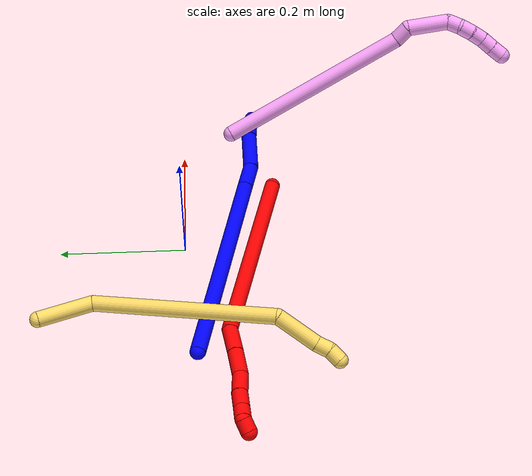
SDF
<sdf version="1.7">
 <world name="default">
  <model name="photoneo_s_sensor">
   <static>1</static>
   <pose>0 0 2 1.57079 1.57079 3.14159</pose>
   <link name="link">
    <inertial><mass>0.1</mass></inertial>
    <sensor name="sensor" type="depth">
     <update_rate>30</update_rate>
     <camera>
      <horizontal_fov>1.22</horizontal_fov>
      <image><width>1920</width><height>1200</height><format>B8G8R8</format></image>
      <clip><near>0.1</near><far>4</far></clip>
      <depth_camera><output>points</output></depth_camera>
     </camera>
     <plugin name="camera_plugin" filename="libgazebo_ros_depth_camera.so">
      <baseline>0.2</baseline>
      <alwaysOn>1</alwaysOn>
      <updateRate>0.0</updateRate>
      <cameraName>camera_ir</cameraName>
      <imageTopicName>/camera/color/image_raw</imageTopicName>
      <cameraInfoTopicName>/camera/color/camera_info</cameraInfoTopicName>
      <depthImageTopicName>/camera/depth/image_raw</depthImageTopicName>
      <depthImageCameraInfoTopicName>/camera/depth/camera_info</depthImageCameraInfoTopicName>
      <pointCloudTopicName>/camera/depth/points</pointCloudTopicName>
      <frameName>fr_optical</frameName>
      <pointCloudCutoff>0.1</pointCloudCutoff>
      <pointCloudCutoffMax>2.0</pointCloudCutoffMax>
      <distortionK1>0</distortionK1>
      <distortionK2>0</distortionK2>
      <distortionK3>0</distortionK3>
      <distortionT1>0</distortionT1>
      <distortionT2>0</distortionT2>
      <CxPrime>0</CxPrime>
      <Cx>0</Cx>
      <Cy>0</Cy>
      <focalLength>0</focalLength>
      <hackBaseline>0</hackBaseline>
     </plugin>
    </sensor>
   </link>
  </model>
  <model name="bin">
   <static>1</static>
   <link name="bottom">
    <collision name="collision-bottom">
     <pose>0 0 -0.01 0 -0 0</pose>
     <geometry><box><size>0.8 0.6 0.02</size></box></geometry>
     <surface>
      <friction><ode><mu>100</mu><mu2>100</mu2></ode></friction>
      <contact><collide_bitmask>65535</collide_bitmask></contact>
     </surface>
    </collision>
   </link>
   <link name="west_wall">
    <collision name="collision-west_wall">
     <pose>-0.41 0 0.1 0 -0 0</pose>
     <geometry><box><size>0.02 0.6 0.2</size></box></geometry>
     <surface>
      <friction><ode><mu>100</mu><mu2>100</mu2></ode></friction>
      <contact><collide_bitmask>65535</collide_bitmask></contact>
     </surface>
    </collision>
   </link>
   <link name="east_wall">
    <collision name="collision-east_wall">
     <pose>0.41 0 0.1 0 -0 0</pose>
     <geometry><box><size>0.02 0.6 0.2</size></box></geometry>
     <surface>
      <friction><ode><mu>100</mu><mu2>100</mu2></ode></friction>
      <contact><collide_bitmask>65535</collide_bitmask></contact>
     </surface>
    </collision>
   </link>
   <link name="south_wall">
    <collision name="collision-south_wall">
     <pose>0 -0.31 0.1 0 -0 0</pose>
     <geometry><box><size>0.8 0.02 0.2</size></box></geometry>
     <surface>
      <friction><ode><mu>100</mu><mu2>100</mu2></ode></friction>
      <contact><collide_bitmask>65535</collide_bitmask></contact>
     </surface>
    </collision>
   </link>
   <link name="north_wall">
    <collision name="collision-north_wall">
     <pose>0 0.31 0.1 0 -0 0</pose>
     <geometry><box><size>0.8 0.02 0.2</size></box></geometry>
     <surface>
      <friction><ode><mu>100</mu><mu2>100</mu2></ode></friction>
      <contact><collide_bitmask>65535</collide_bitmask></contact>
     </surface>
    </collision>
   </link>
  </model>
  <model name="1">
   <static>0</static>
   <link name="1">
    <collision name="collision-cylinder-e_1_1_4">
     <pose>0.16223 -0.052903 -0.01515 1.84971 1.24377 1.52041</pose>
     <geometry><cylinder><radius>0.0125</radius><length>0.342619</length></cylinder></geometry>
     <surface>
      <friction><ode><mu>1.16</mu><mu2>1.16</mu2><slip1>0</slip1><slip2>0</slip2></ode></friction>
      <contact><ode><kp>1e+06</kp><kd>1</kd><max_vel>0</max_vel><min_depth>0.001</min_depth></ode></contact>
     </surface>
    </collision>
    <visual name="visual-cylinder-e_1_1_4">
     <pose>0.16223 -0.052903 -0.01515 1.84971 1.24377 1.52041</pose>
     <geometry><cylinder><radius>0.0125</radius><length>0.342619</length></cylinder></geometry>
     <material><ambient>0 0 1 1</ambient></material>
    </visual>
    <collision name="collision-cylinder-e_2_4_5">
     <pose>0.344215 -0.109629 -0.032409 2.07479 1.35322 1.87354</pose>
     <geometry><cylinder><radius>0.0125</radius><length>0.040462</length></cylinder></geometry>
     <surface>
      <friction><ode><mu>1.16</mu><mu2>1.16</mu2><slip1>0</slip1><slip2>0</slip2></ode></friction>
      <contact><ode><kp>1e+06</kp><kd>1</kd><max_vel>0</max_vel><min_depth>0.001</min_depth></ode></contact>
     </surface>
    </collision>
    <visual name="visual-cylinder-e_2_4_5">
     <pose>0.344215 -0.109629 -0.032409 2.07479 1.35322 1.87354</pose>
     <geometry><cylinder><radius>0.0125</radius><length>0.040462</length></cylinder></geometry>
     <material><ambient>0 0 1 1</ambient></material>
    </visual>
    <collision name="collision-cylinder-e_3_5_6">
     <pose>0.392017 -0.120765 -0.046249 2.58425 1.11291 2.27935</pose>
     <geometry><cylinder><radius>0.0125</radius><length>0.062539</length></cylinder></geometry>
     <surface>
      <friction><ode><mu>1.16</mu><mu2>1.16</mu2><slip1>0</slip1><slip2>0</slip2></ode></friction>
      <contact><ode><kp>1e+06</kp><kd>1</kd><max_vel>0</max_vel><min_depth>0.001</min_depth></ode></contact>
     </surface>
    </collision>
    <visual name="visual-cylinder-e_3_5_6">
     <pose>0.392017 -0.120765 -0.046249 2.58425 1.11291 2.27935</pose>
     <geometry><cylinder><radius>0.0125</radius><length>0.062539</length></cylinder></geometry>
     <material><ambient>0 0 1 1</ambient></material>
    </visual>
    <collision name="collision-cylinder-e_4_6_7">
     <pose>0.434695 -0.134456 -0.061545 2.08031 1.10753 1.62309</pose>
     <geometry><cylinder><radius>0.0125</radius><length>0.032707</length></cylinder></geometry>
     <surface>
      <friction><ode><mu>1.16</mu><mu2>1.16</mu2><slip1>0</slip1><slip2>0</slip2></ode></friction>
      <contact><ode><kp>1e+06</kp><kd>1</kd><max_vel>0</max_vel><min_depth>0.001</min_depth></ode></contact>
     </surface>
    </collision>
    <visual name="visual-cylinder-e_4_6_7">
     <pose>0.434695 -0.134456 -0.061545 2.08031 1.10753 1.62309</pose>
     <geometry><cylinder><radius>0.0125</radius><length>0.032707</length></cylinder></geometry>
     <material><ambient>0 0 1 1</ambient></material>
    </visual>
    <collision name="collision-cylinder-e_5_7_2">
     <pose>0.457489 -0.147947 -0.064644 1.50554 0.853102 0.804966</pose>
     <geometry><cylinder><radius>0.0125</radius><length>0.021673</length></cylinder></geometry>
     <surface>
      <friction><ode><mu>1.16</mu><mu2>1.16</mu2><slip1>0</slip1><slip2>0</slip2></ode></friction>
      <contact><ode><kp>1e+06</kp><kd>1</kd><max_vel>0</max_vel><min_depth>0.001</min_depth></ode></contact>
     </surface>
    </collision>
    <visual name="visual-cylinder-e_5_7_2">
     <pose>0.457489 -0.147947 -0.064644 1.50554 0.853102 0.804966</pose>
     <geometry><cylinder><radius>0.0125</radius><length>0.021673</length></cylinder></geometry>
     <material><ambient>0 0 1 1</ambient></material>
    </visual>
    <collision name="collision-sphere-2">
     <pose>0.465652 -0.155059 -0.06418 0 -0 0</pose>
     <geometry><sphere><radius>0.0125</radius></sphere></geometry>
     <surface>
      <friction><ode><mu>1.16</mu><mu2>1.16</mu2><slip1>0</slip1><slip2>0</slip2></ode></friction>
      <contact><ode><kp>1e+06</kp><kd>1</kd><max_vel>0</max_vel><min_depth>0.001</min_depth></ode></contact>
     </surface>
    </collision>
    <visual name="visual-sphere-2">
     <pose>0.465652 -0.155059 -0.06418 0 -0 0</pose>
     <geometry><sphere><radius>0.0125</radius></sphere></geometry>
     <material><ambient>0 0 1 1</ambient></material>
    </visual>
    <collision name="collision-sphere-7">
     <pose>0.449325 -0.140835 -0.065109 0 -0 0</pose>
     <geometry><sphere><radius>0.0125</radius></sphere></geometry>
     <surface>
      <friction><ode><mu>1.16</mu><mu2>1.16</mu2><slip1>0</slip1><slip2>0</slip2></ode></friction>
      <contact><ode><kp>1e+06</kp><kd>1</kd><max_vel>0</max_vel><min_depth>0.001</min_depth></ode></contact>
     </surface>
    </collision>
    <visual name="visual-sphere-7">
     <pose>0.449325 -0.140835 -0.065109 0 -0 0</pose>
     <geometry><sphere><radius>0.0125</radius></sphere></geometry>
     <material><ambient>0 0 1 1</ambient></material>
    </visual>
    <collision name="collision-sphere-6">
     <pose>0.420065 -0.128076 -0.05798 0 -0 0</pose>
     <geometry><sphere><radius>0.0125</radius></sphere></geometry>
     <surface>
      <friction><ode><mu>1.16</mu><mu2>1.16</mu2><slip1>0</slip1><slip2>0</slip2></ode></friction>
      <contact><ode><kp>1e+06</kp><kd>1</kd><max_vel>0</max_vel><min_depth>0.001</min_depth></ode></contact>
     </surface>
    </collision>
    <visual name="visual-sphere-6">
     <pose>0.420065 -0.128076 -0.05798 0 -0 0</pose>
     <geometry><sphere><radius>0.0125</radius></sphere></geometry>
     <material><ambient>0 0 1 1</ambient></material>
    </visual>
    <collision name="collision-sphere-5">
     <pose>0.363969 -0.113453 -0.034518 0 -0 0</pose>
     <geometry><sphere><radius>0.0125</radius></sphere></geometry>
     <surface>
      <friction><ode><mu>1.16</mu><mu2>1.16</mu2><slip1>0</slip1><slip2>0</slip2></ode></friction>
      <contact><ode><kp>1e+06</kp><kd>1</kd><max_vel>0</max_vel><min_depth>0.001</min_depth></ode></contact>
     </surface>
    </collision>
    <visual name="visual-sphere-5">
     <pose>0.363969 -0.113453 -0.034518 0 -0 0</pose>
     <geometry><sphere><radius>0.0125</radius></sphere></geometry>
     <material><ambient>0 0 1 1</ambient></material>
    </visual>
    <collision name="collision-sphere-1">
     <geometry><sphere><radius>0.0125</radius></sphere></geometry>
     <surface>
      <friction><ode><mu>1.16</mu><mu2>1.16</mu2><slip1>0</slip1><slip2>0</slip2></ode></friction>
      <contact><ode><kp>1e+06</kp><kd>1</kd><max_vel>0</max_vel><min_depth>0.001</min_depth></ode></contact>
     </surface>
    </collision>
    <visual name="visual-sphere-1">
     <geometry><sphere><radius>0.0125</radius></sphere></geometry>
     <material><ambient>0 0 1 1</ambient></material>
    </visual>
    <collision name="collision-sphere-4">
     <pose>0.32446 -0.105805 -0.0303 0 -0 0</pose>
     <geometry><sphere><radius>0.0125</radius></sphere></geometry>
     <surface>
      <friction><ode><mu>1.16</mu><mu2>1.16</mu2><slip1>0</slip1><slip2>0</slip2></ode></friction>
      <contact><ode><kp>1e+06</kp><kd>1</kd><max_vel>0</max_vel><min_depth>0.001</min_depth></ode></contact>
     </surface>
    </collision>
    <visual name="visual-sphere-4">
     <pose>0.32446 -0.105805 -0.0303 0 -0 0</pose>
     <geometry><sphere><radius>0.0125</radius></sphere></geometry>
     <material><ambient>0 0 1 1</ambient></material>
    </visual>
    <inertial>
     <pose>0.23632 -0.075436 -0.025617 0 -0 0</pose>
     <mass>0.5</mass>
     <inertia>
      <ixx>0.001176</ixx>
      <ixy>0</ixy>
      <ixz>0</ixz>
      <iyy>0.004124</iyy>
      <iyz>0</iyz>
      <izz>-0.002176</izz>
     </inertia>
    </inertial>
   </link>
   <pose>-0.208164 -0.018718 0.0115 1.96521 -0.259199 -0.443312</pose>
  </model>
  <model name="2">
   <static>0</static>
   <link name="2">
    <collision name="collision-cylinder-e_1_1_4">
     <pose>-0.094312 0.08413 0.083719 -0.787842 -0.671455 0.28806</pose>
     <geometry><cylinder><radius>0.0125</radius><length>0.303193</length></cylinder></geometry>
     <surface>
      <friction><ode><mu>1.16</mu><mu2>1.16</mu2><slip1>0</slip1><slip2>0</slip2></ode></friction>
      <contact><ode><kp>1e+06</kp><kd>1</kd><max_vel>0</max_vel><min_depth>0.001</min_depth></ode></contact>
     </surface>
    </collision>
    <visual name="visual-cylinder-e_1_1_4">
     <pose>-0.094312 0.08413 0.083719 -0.787842 -0.671455 0.28806</pose>
     <geometry><cylinder><radius>0.0125</radius><length>0.303193</length></cylinder></geometry>
     <material><ambient>1 0 0 1</ambient></material>
    </visual>
    <collision name="collision-cylinder-e_2_4_5">
     <pose>-0.194527 0.180614 0.18487 -0.616579 -0.269541 0.086303</pose>
     <geometry><cylinder><radius>0.0125</radius><length>0.044331</length></cylinder></geometry>
     <surface>
      <friction><ode><mu>1.16</mu><mu2>1.16</mu2><slip1>0</slip1><slip2>0</slip2></ode></friction>
      <contact><ode><kp>1e+06</kp><kd>1</kd><max_vel>0</max_vel><min_depth>0.001</min_depth></ode></contact>
     </surface>
    </collision>
    <visual name="visual-cylinder-e_2_4_5">
     <pose>-0.194527 0.180614 0.18487 -0.616579 -0.269541 0.086303</pose>
     <geometry><cylinder><radius>0.0125</radius><length>0.044331</length></cylinder></geometry>
     <material><ambient>1 0 0 1</ambient></material>
    </visual>
    <collision name="collision-cylinder-e_3_5_6">
     <pose>-0.206873 0.203748 0.219395 -0.56266 -0.308658 0.089855</pose>
     <geometry><cylinder><radius>0.0125</radius><length>0.042424</length></cylinder></geometry>
     <surface>
      <friction><ode><mu>1.16</mu><mu2>1.16</mu2><slip1>0</slip1><slip2>0</slip2></ode></friction>
      <contact><ode><kp>1e+06</kp><kd>1</kd><max_vel>0</max_vel><min_depth>0.001</min_depth></ode></contact>
     </surface>
    </collision>
    <visual name="visual-cylinder-e_3_5_6">
     <pose>-0.206873 0.203748 0.219395 -0.56266 -0.308658 0.089855</pose>
     <geometry><cylinder><radius>0.0125</radius><length>0.042424</length></cylinder></geometry>
     <material><ambient>1 0 0 1</ambient></material>
    </visual>
    <collision name="collision-cylinder-e_4_6_7">
     <pose>-0.22067 0.228337 0.247556 -0.895165 -0.393805 0.190956</pose>
     <geometry><cylinder><radius>0.0125</radius><length>0.038325</length></cylinder></geometry>
     <surface>
      <friction><ode><mu>1.16</mu><mu2>1.16</mu2><slip1>0</slip1><slip2>0</slip2></ode></friction>
      <contact><ode><kp>1e+06</kp><kd>1</kd><max_vel>0</max_vel><min_depth>0.001</min_depth></ode></contact>
     </surface>
    </collision>
    <visual name="visual-cylinder-e_4_6_7">
     <pose>-0.22067 0.228337 0.247556 -0.895165 -0.393805 0.190956</pose>
     <geometry><cylinder><radius>0.0125</radius><length>0.038325</length></cylinder></geometry>
     <material><ambient>1 0 0 1</ambient></material>
    </visual>
    <collision name="collision-cylinder-e_5_7_8">
     <pose>-0.232422 0.25248 0.26864 -0.801005 -0.29668 0.126371</pose>
     <geometry><cylinder><radius>0.0125</radius><length>0.030101</length></cylinder></geometry>
     <surface>
      <friction><ode><mu>1.16</mu><mu2>1.16</mu2><slip1>0</slip1><slip2>0</slip2></ode></friction>
      <contact><ode><kp>1e+06</kp><kd>1</kd><max_vel>0</max_vel><min_depth>0.001</min_depth></ode></contact>
     </surface>
    </collision>
    <visual name="visual-cylinder-e_5_7_8">
     <pose>-0.232422 0.25248 0.26864 -0.801005 -0.29668 0.126371</pose>
     <geometry><cylinder><radius>0.0125</radius><length>0.030101</length></cylinder></geometry>
     <material><ambient>1 0 0 1</ambient></material>
    </visual>
    <collision name="collision-cylinder-e_6_8_9">
     <pose>-0.239971 0.270197 0.28567 -0.811016 -0.29988 0.129531</pose>
     <geometry><cylinder><radius>0.0125</radius><length>0.021316</length></cylinder></geometry>
     <surface>
      <friction><ode><mu>1.16</mu><mu2>1.16</mu2><slip1>0</slip1><slip2>0</slip2></ode></friction>
      <contact><ode><kp>1e+06</kp><kd>1</kd><max_vel>0</max_vel><min_depth>0.001</min_depth></ode></contact>
     </surface>
    </collision>
    <visual name="visual-cylinder-e_6_8_9">
     <pose>-0.239971 0.270197 0.28567 -0.811016 -0.29988 0.129531</pose>
     <geometry><cylinder><radius>0.0125</radius><length>0.021316</length></cylinder></geometry>
     <material><ambient>1 0 0 1</ambient></material>
    </visual>
    <collision name="collision-cylinder-e_7_9_2">
     <pose>-0.244843 0.27773 0.30269 -0.015121 -0.170557 0.001293</pose>
     <geometry><cylinder><radius>0.0125</radius><length>0.020311</length></cylinder></geometry>
     <surface>
      <friction><ode><mu>1.16</mu><mu2>1.16</mu2><slip1>0</slip1><slip2>0</slip2></ode></friction>
      <contact><ode><kp>1e+06</kp><kd>1</kd><max_vel>0</max_vel><min_depth>0.001</min_depth></ode></contact>
     </surface>
    </collision>
    <visual name="visual-cylinder-e_7_9_2">
     <pose>-0.244843 0.27773 0.30269 -0.015121 -0.170557 0.001293</pose>
     <geometry><cylinder><radius>0.0125</radius><length>0.020311</length></cylinder></geometry>
     <material><ambient>1 0 0 1</ambient></material>
    </visual>
    <collision name="collision-sphere-2">
     <pose>-0.246566 0.277882 0.312697 0 -0 0</pose>
     <geometry><sphere><radius>0.0125</radius></sphere></geometry>
     <surface>
      <friction><ode><mu>1.16</mu><mu2>1.16</mu2><slip1>0</slip1><slip2>0</slip2></ode></friction>
      <contact><ode><kp>1e+06</kp><kd>1</kd><max_vel>0</max_vel><min_depth>0.001</min_depth></ode></contact>
     </surface>
    </collision>
    <visual name="visual-sphere-2">
     <pose>-0.246566 0.277882 0.312697 0 -0 0</pose>
     <geometry><sphere><radius>0.0125</radius></sphere></geometry>
     <material><ambient>1 0 0 1</ambient></material>
    </visual>
    <collision name="collision-sphere-9">
     <pose>-0.243119 0.277579 0.292683 0 -0 0</pose>
     <geometry><sphere><radius>0.0125</radius></sphere></geometry>
     <surface>
      <friction><ode><mu>1.16</mu><mu2>1.16</mu2><slip1>0</slip1><slip2>0</slip2></ode></friction>
      <contact><ode><kp>1e+06</kp><kd>1</kd><max_vel>0</max_vel><min_depth>0.001</min_depth></ode></contact>
     </surface>
    </collision>
    <visual name="visual-sphere-9">
     <pose>-0.243119 0.277579 0.292683 0 -0 0</pose>
     <geometry><sphere><radius>0.0125</radius></sphere></geometry>
     <material><ambient>1 0 0 1</ambient></material>
    </visual>
    <collision name="collision-sphere-4">
     <pose>-0.188625 0.168259 0.167439 0 -0 0</pose>
     <geometry><sphere><radius>0.0125</radius></sphere></geometry>
     <surface>
      <friction><ode><mu>1.16</mu><mu2>1.16</mu2><slip1>0</slip1><slip2>0</slip2></ode></friction>
      <contact><ode><kp>1e+06</kp><kd>1</kd><max_vel>0</max_vel><min_depth>0.001</min_depth></ode></contact>
     </surface>
    </collision>
    <visual name="visual-sphere-4">
     <pose>-0.188625 0.168259 0.167439 0 -0 0</pose>
     <geometry><sphere><radius>0.0125</radius></sphere></geometry>
     <material><ambient>1 0 0 1</ambient></material>
    </visual>
    <collision name="collision-sphere-1">
     <geometry><sphere><radius>0.0125</radius></sphere></geometry>
     <surface>
      <friction><ode><mu>1.16</mu><mu2>1.16</mu2><slip1>0</slip1><slip2>0</slip2></ode></friction>
      <contact><ode><kp>1e+06</kp><kd>1</kd><max_vel>0</max_vel><min_depth>0.001</min_depth></ode></contact>
     </surface>
    </collision>
    <visual name="visual-sphere-1">
     <geometry><sphere><radius>0.0125</radius></sphere></geometry>
     <material><ambient>1 0 0 1</ambient></material>
    </visual>
    <collision name="collision-sphere-8">
     <pose>-0.236822 0.262815 0.278657 0 -0 0</pose>
     <geometry><sphere><radius>0.0125</radius></sphere></geometry>
     <surface>
      <friction><ode><mu>1.16</mu><mu2>1.16</mu2><slip1>0</slip1><slip2>0</slip2></ode></friction>
      <contact><ode><kp>1e+06</kp><kd>1</kd><max_vel>0</max_vel><min_depth>0.001</min_depth></ode></contact>
     </surface>
    </collision>
    <visual name="visual-sphere-8">
     <pose>-0.236822 0.262815 0.278657 0 -0 0</pose>
     <geometry><sphere><radius>0.0125</radius></sphere></geometry>
     <material><ambient>1 0 0 1</ambient></material>
    </visual>
    <collision name="collision-sphere-5">
     <pose>-0.200429 0.192968 0.202301 0 -0 0</pose>
     <geometry><sphere><radius>0.0125</radius></sphere></geometry>
     <surface>
      <friction><ode><mu>1.16</mu><mu2>1.16</mu2><slip1>0</slip1><slip2>0</slip2></ode></friction>
      <contact><ode><kp>1e+06</kp><kd>1</kd><max_vel>0</max_vel><min_depth>0.001</min_depth></ode></contact>
     </surface>
    </collision>
    <visual name="visual-sphere-5">
     <pose>-0.200429 0.192968 0.202301 0 -0 0</pose>
     <geometry><sphere><radius>0.0125</radius></sphere></geometry>
     <material><ambient>1 0 0 1</ambient></material>
    </visual>
    <collision name="collision-sphere-6">
     <pose>-0.213317 0.214529 0.236489 0 -0 0</pose>
     <geometry><sphere><radius>0.0125</radius></sphere></geometry>
     <surface>
      <friction><ode><mu>1.16</mu><mu2>1.16</mu2><slip1>0</slip1><slip2>0</slip2></ode></friction>
      <contact><ode><kp>1e+06</kp><kd>1</kd><max_vel>0</max_vel><min_depth>0.001</min_depth></ode></contact>
     </surface>
    </collision>
    <visual name="visual-sphere-6">
     <pose>-0.213317 0.214529 0.236489 0 -0 0</pose>
     <geometry><sphere><radius>0.0125</radius></sphere></geometry>
     <material><ambient>1 0 0 1</ambient></material>
    </visual>
    <collision name="collision-sphere-7">
     <pose>-0.228022 0.242145 0.258622 0 -0 0</pose>
     <geometry><sphere><radius>0.0125</radius></sphere></geometry>
     <surface>
      <friction><ode><mu>1.16</mu><mu2>1.16</mu2><slip1>0</slip1><slip2>0</slip2></ode></friction>
      <contact><ode><kp>1e+06</kp><kd>1</kd><max_vel>0</max_vel><min_depth>0.001</min_depth></ode></contact>
     </surface>
    </collision>
    <visual name="visual-sphere-7">
     <pose>-0.228022 0.242145 0.258622 0 -0 0</pose>
     <geometry><sphere><radius>0.0125</radius></sphere></geometry>
     <material><ambient>1 0 0 1</ambient></material>
    </visual>
    <inertial>
     <pose>-0.143072 0.139818 0.145394 0 -0 0</pose>
     <mass>0.5</mass>
     <inertia>
      <ixx>0.002284</ixx>
      <ixy>0</ixy>
      <ixz>0</ixz>
      <iyy>0.002439</iyy>
      <iyz>0</iyz>
      <izz>0.000173</izz>
     </inertia>
    </inertial>
   </link>
   <pose>0.123875 -0.145958 0.011773 2.05778 -0.35353 -1.1046</pose>
  </model>
  <model name="4">
   <static>0</static>
   <link name="4">
    <collision name="collision-cylinder-e_1_1_4">
     <pose>-0.015459 -0.141959 -0.053119 1.92885 -0.101642 -0.146421</pose>
     <geometry><cylinder><radius>0.0125</radius><length>0.304717</length></cylinder></geometry>
     <surface>
      <friction><ode><mu>1.16</mu><mu2>1.16</mu2><slip1>0</slip1><slip2>0</slip2></ode></friction>
      <contact><ode><kp>1e+06</kp><kd>1</kd><max_vel>0</max_vel><min_depth>0.001</min_depth></ode></contact>
     </surface>
    </collision>
    <visual name="visual-cylinder-e_1_1_4">
     <pose>-0.015459 -0.141959 -0.053119 1.92885 -0.101642 -0.146421</pose>
     <geometry><cylinder><radius>0.0125</radius><length>0.304717</length></cylinder></geometry>
     <material><ambient>1 0.65098 0.996078 1</ambient></material>
    </visual>
    <collision name="collision-cylinder-e_2_4_5">
     <pose>-0.034486 -0.293651 -0.114186 2.25556 -0.276622 -0.570747</pose>
     <geometry><cylinder><radius>0.0125</radius><length>0.026124</length></cylinder></geometry>
     <surface>
      <friction><ode><mu>1.16</mu><mu2>1.16</mu2><slip1>0</slip1><slip2>0</slip2></ode></friction>
      <contact><ode><kp>1e+06</kp><kd>1</kd><max_vel>0</max_vel><min_depth>0.001</min_depth></ode></contact>
     </surface>
    </collision>
    <visual name="visual-cylinder-e_2_4_5">
     <pose>-0.034486 -0.293651 -0.114186 2.25556 -0.276622 -0.570747</pose>
     <geometry><cylinder><radius>0.0125</radius><length>0.026124</length></cylinder></geometry>
     <material><ambient>1 0.65098 0.996078 1</ambient></material>
    </visual>
    <collision name="collision-cylinder-e_3_5_6">
     <pose>-0.030695 -0.334409 -0.128688 1.77901 0.228014 0.28059</pose>
     <geometry><cylinder><radius>0.0125</radius><length>0.065105</length></cylinder></geometry>
     <surface>
      <friction><ode><mu>1.16</mu><mu2>1.16</mu2><slip1>0</slip1><slip2>0</slip2></ode></friction>
      <contact><ode><kp>1e+06</kp><kd>1</kd><max_vel>0</max_vel><min_depth>0.001</min_depth></ode></contact>
     </surface>
    </collision>
    <visual name="visual-cylinder-e_3_5_6">
     <pose>-0.030695 -0.334409 -0.128688 1.77901 0.228014 0.28059</pose>
     <geometry><cylinder><radius>0.0125</radius><length>0.065105</length></cylinder></geometry>
     <material><ambient>1 0.65098 0.996078 1</ambient></material>
    </visual>
    <collision name="collision-cylinder-e_4_6_7">
     <pose>-0.015355 -0.372103 -0.13813 1.97939 0.832202 1.18457</pose>
     <geometry><cylinder><radius>0.0125</radius><length>0.021589</length></cylinder></geometry>
     <surface>
      <friction><ode><mu>1.16</mu><mu2>1.16</mu2><slip1>0</slip1><slip2>0</slip2></ode></friction>
      <contact><ode><kp>1e+06</kp><kd>1</kd><max_vel>0</max_vel><min_depth>0.001</min_depth></ode></contact>
     </surface>
    </collision>
    <visual name="visual-cylinder-e_4_6_7">
     <pose>-0.015355 -0.372103 -0.13813 1.97939 0.832202 1.18457</pose>
     <geometry><cylinder><radius>0.0125</radius><length>0.021589</length></cylinder></geometry>
     <material><ambient>1 0.65098 0.996078 1</ambient></material>
    </visual>
    <collision name="collision-cylinder-e_5_7_8">
     <pose>0.000167 -0.38605 -0.140172 1.45511 0.799814 0.720012</pose>
     <geometry><cylinder><radius>0.0125</radius><length>0.021027</length></cylinder></geometry>
     <surface>
      <friction><ode><mu>1.16</mu><mu2>1.16</mu2><slip1>0</slip1><slip2>0</slip2></ode></friction>
      <contact><ode><kp>1e+06</kp><kd>1</kd><max_vel>0</max_vel><min_depth>0.001</min_depth></ode></contact>
     </surface>
    </collision>
    <visual name="visual-cylinder-e_5_7_8">
     <pose>0.000167 -0.38605 -0.140172 1.45511 0.799814 0.720012</pose>
     <geometry><cylinder><radius>0.0125</radius><length>0.021027</length></cylinder></geometry>
     <material><ambient>1 0.65098 0.996078 1</ambient></material>
    </visual>
    <collision name="collision-cylinder-e_6_8_9">
     <pose>0.014983 -0.400119 -0.137172 1.26367 0.795753 0.596874</pose>
     <geometry><cylinder><radius>0.0125</radius><length>0.020367</length></cylinder></geometry>
     <surface>
      <friction><ode><mu>1.16</mu><mu2>1.16</mu2><slip1>0</slip1><slip2>0</slip2></ode></friction>
      <contact><ode><kp>1e+06</kp><kd>1</kd><max_vel>0</max_vel><min_depth>0.001</min_depth></ode></contact>
     </surface>
    </collision>
    <visual name="visual-cylinder-e_6_8_9">
     <pose>0.014983 -0.400119 -0.137172 1.26367 0.795753 0.596874</pose>
     <geometry><cylinder><radius>0.0125</radius><length>0.020367</length></cylinder></geometry>
     <material><ambient>1 0.65098 0.996078 1</ambient></material>
    </visual>
    <collision name="collision-cylinder-e_7_9_10">
     <pose>0.030888 -0.412275 -0.13356 1.30533 0.998637 0.790027</pose>
     <geometry><cylinder><radius>0.0125</radius><length>0.020531</length></cylinder></geometry>
     <surface>
      <friction><ode><mu>1.16</mu><mu2>1.16</mu2><slip1>0</slip1><slip2>0</slip2></ode></friction>
      <contact><ode><kp>1e+06</kp><kd>1</kd><max_vel>0</max_vel><min_depth>0.001</min_depth></ode></contact>
     </surface>
    </collision>
    <visual name="visual-cylinder-e_7_9_10">
     <pose>0.030888 -0.412275 -0.13356 1.30533 0.998637 0.790027</pose>
     <geometry><cylinder><radius>0.0125</radius><length>0.020531</length></cylinder></geometry>
     <material><ambient>1 0.65098 0.996078 1</ambient></material>
    </visual>
    <collision name="collision-cylinder-e_8_10_2">
     <pose>0.048052 -0.423213 -0.130843 1.34877 0.980692 0.806709</pose>
     <geometry><cylinder><radius>0.0125</radius><length>0.02054</length></cylinder></geometry>
     <surface>
      <friction><ode><mu>1.16</mu><mu2>1.16</mu2><slip1>0</slip1><slip2>0</slip2></ode></friction>
      <contact><ode><kp>1e+06</kp><kd>1</kd><max_vel>0</max_vel><min_depth>0.001</min_depth></ode></contact>
     </surface>
    </collision>
    <visual name="visual-cylinder-e_8_10_2">
     <pose>0.048052 -0.423213 -0.130843 1.34877 0.980692 0.806709</pose>
     <geometry><cylinder><radius>0.0125</radius><length>0.02054</length></cylinder></geometry>
     <material><ambient>1 0.65098 0.996078 1</ambient></material>
    </visual>
    <collision name="collision-sphere-2">
     <pose>0.056585 -0.428788 -0.129585 0 -0 0</pose>
     <geometry><sphere><radius>0.0125</radius></sphere></geometry>
     <surface>
      <friction><ode><mu>1.16</mu><mu2>1.16</mu2><slip1>0</slip1><slip2>0</slip2></ode></friction>
      <contact><ode><kp>1e+06</kp><kd>1</kd><max_vel>0</max_vel><min_depth>0.001</min_depth></ode></contact>
     </surface>
    </collision>
    <visual name="visual-sphere-2">
     <pose>0.056585 -0.428788 -0.129585 0 -0 0</pose>
     <geometry><sphere><radius>0.0125</radius></sphere></geometry>
     <material><ambient>1 0.65098 0.996078 1</ambient></material>
    </visual>
    <collision name="collision-sphere-10">
     <pose>0.039519 -0.417639 -0.132101 0 -0 0</pose>
     <geometry><sphere><radius>0.0125</radius></sphere></geometry>
     <surface>
      <friction><ode><mu>1.16</mu><mu2>1.16</mu2><slip1>0</slip1><slip2>0</slip2></ode></friction>
      <contact><ode><kp>1e+06</kp><kd>1</kd><max_vel>0</max_vel><min_depth>0.001</min_depth></ode></contact>
     </surface>
    </collision>
    <visual name="visual-sphere-10">
     <pose>0.039519 -0.417639 -0.132101 0 -0 0</pose>
     <geometry><sphere><radius>0.0125</radius></sphere></geometry>
     <material><ambient>1 0.65098 0.996078 1</ambient></material>
    </visual>
    <collision name="collision-sphere-9">
     <pose>0.022258 -0.406912 -0.135018 0 -0 0</pose>
     <geometry><sphere><radius>0.0125</radius></sphere></geometry>
     <surface>
      <friction><ode><mu>1.16</mu><mu2>1.16</mu2><slip1>0</slip1><slip2>0</slip2></ode></friction>
      <contact><ode><kp>1e+06</kp><kd>1</kd><max_vel>0</max_vel><min_depth>0.001</min_depth></ode></contact>
     </surface>
    </collision>
    <visual name="visual-sphere-9">
     <pose>0.022258 -0.406912 -0.135018 0 -0 0</pose>
     <geometry><sphere><radius>0.0125</radius></sphere></geometry>
     <material><ambient>1 0.65098 0.996078 1</ambient></material>
    </visual>
    <collision name="collision-sphere-4">
     <pose>-0.030919 -0.283919 -0.106238 0 -0 0</pose>
     <geometry><sphere><radius>0.0125</radius></sphere></geometry>
     <surface>
      <friction><ode><mu>1.16</mu><mu2>1.16</mu2><slip1>0</slip1><slip2>0</slip2></ode></friction>
      <contact><ode><kp>1e+06</kp><kd>1</kd><max_vel>0</max_vel><min_depth>0.001</min_depth></ode></contact>
     </surface>
    </collision>
    <visual name="visual-sphere-4">
     <pose>-0.030919 -0.283919 -0.106238 0 -0 0</pose>
     <geometry><sphere><radius>0.0125</radius></sphere></geometry>
     <material><ambient>1 0.65098 0.996078 1</ambient></material>
    </visual>
    <collision name="collision-sphere-1">
     <geometry><sphere><radius>0.0125</radius></sphere></geometry>
     <surface>
      <friction><ode><mu>1.16</mu><mu2>1.16</mu2><slip1>0</slip1><slip2>0</slip2></ode></friction>
      <contact><ode><kp>1e+06</kp><kd>1</kd><max_vel>0</max_vel><min_depth>0.001</min_depth></ode></contact>
     </surface>
    </collision>
    <visual name="visual-sphere-1">
     <geometry><sphere><radius>0.0125</radius></sphere></geometry>
     <material><ambient>1 0.65098 0.996078 1</ambient></material>
    </visual>
    <collision name="collision-sphere-8">
     <pose>0.007708 -0.393327 -0.139327 0 -0 0</pose>
     <geometry><sphere><radius>0.0125</radius></sphere></geometry>
     <surface>
      <friction><ode><mu>1.16</mu><mu2>1.16</mu2><slip1>0</slip1><slip2>0</slip2></ode></friction>
      <contact><ode><kp>1e+06</kp><kd>1</kd><max_vel>0</max_vel><min_depth>0.001</min_depth></ode></contact>
     </surface>
    </collision>
    <visual name="visual-sphere-8">
     <pose>0.007708 -0.393327 -0.139327 0 -0 0</pose>
     <geometry><sphere><radius>0.0125</radius></sphere></geometry>
     <material><ambient>1 0.65098 0.996078 1</ambient></material>
    </visual>
    <collision name="collision-sphere-5">
     <pose>-0.038053 -0.303384 -0.122133 0 -0 0</pose>
     <geometry><sphere><radius>0.0125</radius></sphere></geometry>
     <surface>
      <friction><ode><mu>1.16</mu><mu2>1.16</mu2><slip1>0</slip1><slip2>0</slip2></ode></friction>
      <contact><ode><kp>1e+06</kp><kd>1</kd><max_vel>0</max_vel><min_depth>0.001</min_depth></ode></contact>
     </surface>
    </collision>
    <visual name="visual-sphere-5">
     <pose>-0.038053 -0.303384 -0.122133 0 -0 0</pose>
     <geometry><sphere><radius>0.0125</radius></sphere></geometry>
     <material><ambient>1 0.65098 0.996078 1</ambient></material>
    </visual>
    <collision name="collision-sphere-6">
     <pose>-0.023337 -0.365434 -0.135243 0 -0 0</pose>
     <geometry><sphere><radius>0.0125</radius></sphere></geometry>
     <surface>
      <friction><ode><mu>1.16</mu><mu2>1.16</mu2><slip1>0</slip1><slip2>0</slip2></ode></friction>
      <contact><ode><kp>1e+06</kp><kd>1</kd><max_vel>0</max_vel><min_depth>0.001</min_depth></ode></contact>
     </surface>
    </collision>
    <visual name="visual-sphere-6">
     <pose>-0.023337 -0.365434 -0.135243 0 -0 0</pose>
     <geometry><sphere><radius>0.0125</radius></sphere></geometry>
     <material><ambient>1 0.65098 0.996078 1</ambient></material>
    </visual>
    <collision name="collision-sphere-7">
     <pose>-0.007373 -0.378773 -0.141018 0 -0 0</pose>
     <geometry><sphere><radius>0.0125</radius></sphere></geometry>
     <surface>
      <friction><ode><mu>1.16</mu><mu2>1.16</mu2><slip1>0</slip1><slip2>0</slip2></ode></friction>
      <contact><ode><kp>1e+06</kp><kd>1</kd><max_vel>0</max_vel><min_depth>0.001</min_depth></ode></contact>
     </surface>
    </collision>
    <visual name="visual-sphere-7">
     <pose>-0.007373 -0.378773 -0.141018 0 -0 0</pose>
     <geometry><sphere><radius>0.0125</radius></sphere></geometry>
     <material><ambient>1 0.65098 0.996078 1</ambient></material>
    </visual>
    <inertial>
     <pose>-0.012023 -0.228316 -0.083401 0 -0 0</pose>
     <mass>0.5</mass>
     <inertia>
      <ixx>0.002031</ixx>
      <ixy>0</ixy>
      <ixz>0</ixz>
      <iyy>-0.001157</iyy>
      <iyz>0</iyz>
      <izz>0.002458</izz>
     </inertia>
    </inertial>
   </link>
   <pose>0.141715 -0.080544 0.121023 -3.12922 0.461058 -2.74611</pose>
  </model>
  <model name="5">
   <static>0</static>
   <link name="5">
    <collision name="collision-cylinder-e_1_1_4">
     <pose>-0.036291 -0.004773 -0.024803 2.95148 -0.962771 -2.78052</pose>
     <geometry><cylinder><radius>0.0125</radius><length>0.08843</length></cylinder></geometry>
     <surface>
      <friction><ode><mu>1.16</mu><mu2>1.16</mu2><slip1>0</slip1><slip2>0</slip2></ode></friction>
      <contact><ode><kp>1e+06</kp><kd>1</kd><max_vel>0</max_vel><min_depth>0.001</min_depth></ode></contact>
     </surface>
    </collision>
    <visual name="visual-cylinder-e_1_1_4">
     <pose>-0.036291 -0.004773 -0.024803 2.95148 -0.962771 -2.78052</pose>
     <geometry><cylinder><radius>0.0125</radius><length>0.08843</length></cylinder></geometry>
     <material><ambient>1 0.858824 0.4 1</ambient></material>
    </visual>
    <collision name="collision-cylinder-e_2_4_5">
     <pose>-0.127998 -0.01022 -0.18689 3.13668 -0.383652 -3.1163</pose>
     <geometry><cylinder><radius>0.0125</radius><length>0.296098</length></cylinder></geometry>
     <surface>
      <friction><ode><mu>1.16</mu><mu2>1.16</mu2><slip1>0</slip1><slip2>0</slip2></ode></friction>
      <contact><ode><kp>1e+06</kp><kd>1</kd><max_vel>0</max_vel><min_depth>0.001</min_depth></ode></contact>
     </surface>
    </collision>
    <visual name="visual-cylinder-e_2_4_5">
     <pose>-0.127998 -0.01022 -0.18689 3.13668 -0.383652 -3.1163</pose>
     <geometry><cylinder><radius>0.0125</radius><length>0.296098</length></cylinder></geometry>
     <material><ambient>1 0.858824 0.4 1</ambient></material>
    </visual>
    <collision name="collision-cylinder-e_3_5_6">
     <pose>-0.187261 -0.030069 -0.353737 2.5662 -0.108764 -0.363857</pose>
     <geometry><cylinder><radius>0.0125</radius><length>0.070891</length></cylinder></geometry>
     <surface>
      <friction><ode><mu>1.16</mu><mu2>1.16</mu2><slip1>0</slip1><slip2>0</slip2></ode></friction>
      <contact><ode><kp>1e+06</kp><kd>1</kd><max_vel>0</max_vel><min_depth>0.001</min_depth></ode></contact>
     </surface>
    </collision>
    <visual name="visual-cylinder-e_3_5_6">
     <pose>-0.187261 -0.030069 -0.353737 2.5662 -0.108764 -0.363857</pose>
     <geometry><cylinder><radius>0.0125</radius><length>0.070891</length></cylinder></geometry>
     <material><ambient>1 0.858824 0.4 1</ambient></material>
    </visual>
    <collision name="collision-cylinder-e_4_6_7">
     <pose>-0.193527 -0.054096 -0.393426 2.6947 -0.212123 -0.876263</pose>
     <geometry><cylinder><radius>0.0125</radius><length>0.022972</length></cylinder></geometry>
     <surface>
      <friction><ode><mu>1.16</mu><mu2>1.16</mu2><slip1>0</slip1><slip2>0</slip2></ode></friction>
      <contact><ode><kp>1e+06</kp><kd>1</kd><max_vel>0</max_vel><min_depth>0.001</min_depth></ode></contact>
     </surface>
    </collision>
    <visual name="visual-cylinder-e_4_6_7">
     <pose>-0.193527 -0.054096 -0.393426 2.6947 -0.212123 -0.876263</pose>
     <geometry><cylinder><radius>0.0125</radius><length>0.022972</length></cylinder></geometry>
     <material><ambient>1 0.858824 0.4 1</ambient></material>
    </visual>
    <collision name="collision-cylinder-e_5_7_2">
     <pose>-0.195 -0.064887 -0.412528 2.55712 0.087617 0.289382</pose>
     <geometry><cylinder><radius>0.0125</radius><length>0.021608</length></cylinder></geometry>
     <surface>
      <friction><ode><mu>1.16</mu><mu2>1.16</mu2><slip1>0</slip1><slip2>0</slip2></ode></friction>
      <contact><ode><kp>1e+06</kp><kd>1</kd><max_vel>0</max_vel><min_depth>0.001</min_depth></ode></contact>
     </surface>
    </collision>
    <visual name="visual-cylinder-e_5_7_2">
     <pose>-0.195 -0.064887 -0.412528 2.55712 0.087617 0.289382</pose>
     <geometry><cylinder><radius>0.0125</radius><length>0.021608</length></cylinder></geometry>
     <material><ambient>1 0.858824 0.4 1</ambient></material>
    </visual>
    <collision name="collision-sphere-2">
     <pose>-0.194055 -0.070826 -0.421504 0 -0 0</pose>
     <geometry><sphere><radius>0.0125</radius></sphere></geometry>
     <surface>
      <friction><ode><mu>1.16</mu><mu2>1.16</mu2><slip1>0</slip1><slip2>0</slip2></ode></friction>
      <contact><ode><kp>1e+06</kp><kd>1</kd><max_vel>0</max_vel><min_depth>0.001</min_depth></ode></contact>
     </surface>
    </collision>
    <visual name="visual-sphere-2">
     <pose>-0.194055 -0.070826 -0.421504 0 -0 0</pose>
     <geometry><sphere><radius>0.0125</radius></sphere></geometry>
     <material><ambient>1 0.858824 0.4 1</ambient></material>
    </visual>
    <collision name="collision-sphere-7">
     <pose>-0.195945 -0.058949 -0.403551 0 -0 0</pose>
     <geometry><sphere><radius>0.0125</radius></sphere></geometry>
     <surface>
      <friction><ode><mu>1.16</mu><mu2>1.16</mu2><slip1>0</slip1><slip2>0</slip2></ode></friction>
      <contact><ode><kp>1e+06</kp><kd>1</kd><max_vel>0</max_vel><min_depth>0.001</min_depth></ode></contact>
     </surface>
    </collision>
    <visual name="visual-sphere-7">
     <pose>-0.195945 -0.058949 -0.403551 0 -0 0</pose>
     <geometry><sphere><radius>0.0125</radius></sphere></geometry>
     <material><ambient>1 0.858824 0.4 1</ambient></material>
    </visual>
    <collision name="collision-sphere-6">
     <pose>-0.191109 -0.049244 -0.3833 0 -0 0</pose>
     <geometry><sphere><radius>0.0125</radius></sphere></geometry>
     <surface>
      <friction><ode><mu>1.16</mu><mu2>1.16</mu2><slip1>0</slip1><slip2>0</slip2></ode></friction>
      <contact><ode><kp>1e+06</kp><kd>1</kd><max_vel>0</max_vel><min_depth>0.001</min_depth></ode></contact>
     </surface>
    </collision>
    <visual name="visual-sphere-6">
     <pose>-0.191109 -0.049244 -0.3833 0 -0 0</pose>
     <geometry><sphere><radius>0.0125</radius></sphere></geometry>
     <material><ambient>1 0.858824 0.4 1</ambient></material>
    </visual>
    <collision name="collision-sphere-5">
     <pose>-0.183414 -0.010895 -0.324175 0 -0 0</pose>
     <geometry><sphere><radius>0.0125</radius></sphere></geometry>
     <surface>
      <friction><ode><mu>1.16</mu><mu2>1.16</mu2><slip1>0</slip1><slip2>0</slip2></ode></friction>
      <contact><ode><kp>1e+06</kp><kd>1</kd><max_vel>0</max_vel><min_depth>0.001</min_depth></ode></contact>
     </surface>
    </collision>
    <visual name="visual-sphere-5">
     <pose>-0.183414 -0.010895 -0.324175 0 -0 0</pose>
     <geometry><sphere><radius>0.0125</radius></sphere></geometry>
     <material><ambient>1 0.858824 0.4 1</ambient></material>
    </visual>
    <collision name="collision-sphere-1">
     <geometry><sphere><radius>0.0125</radius></sphere></geometry>
     <surface>
      <friction><ode><mu>1.16</mu><mu2>1.16</mu2><slip1>0</slip1><slip2>0</slip2></ode></friction>
      <contact><ode><kp>1e+06</kp><kd>1</kd><max_vel>0</max_vel><min_depth>0.001</min_depth></ode></contact>
     </surface>
    </collision>
    <visual name="visual-sphere-1">
     <geometry><sphere><radius>0.0125</radius></sphere></geometry>
     <material><ambient>1 0.858824 0.4 1</ambient></material>
    </visual>
    <collision name="collision-sphere-4">
     <pose>-0.072582 -0.009546 -0.049605 0 -0 0</pose>
     <geometry><sphere><radius>0.0125</radius></sphere></geometry>
     <surface>
      <friction><ode><mu>1.16</mu><mu2>1.16</mu2><slip1>0</slip1><slip2>0</slip2></ode></friction>
      <contact><ode><kp>1e+06</kp><kd>1</kd><max_vel>0</max_vel><min_depth>0.001</min_depth></ode></contact>
     </surface>
    </collision>
    <visual name="visual-sphere-4">
     <pose>-0.072582 -0.009546 -0.049605 0 -0 0</pose>
     <geometry><sphere><radius>0.0125</radius></sphere></geometry>
     <material><ambient>1 0.858824 0.4 1</ambient></material>
    </visual>
    <inertial>
     <pose>-0.126087 -0.01645 -0.20112 0 -0 0</pose>
     <mass>0.5</mass>
     <inertia>
      <ixx>-0.002107</ixx>
      <ixy>0</ixy>
      <ixz>0</ixz>
      <iyy>0.002125</iyy>
      <iyz>0</iyz>
      <izz>0.000871</izz>
     </inertia>
    </inertial>
   </link>
   <pose>-0.138554 0.227121 0.013839 1.73303 -0.002717 2.51187</pose>
  </model>
 </world>
</sdf>
